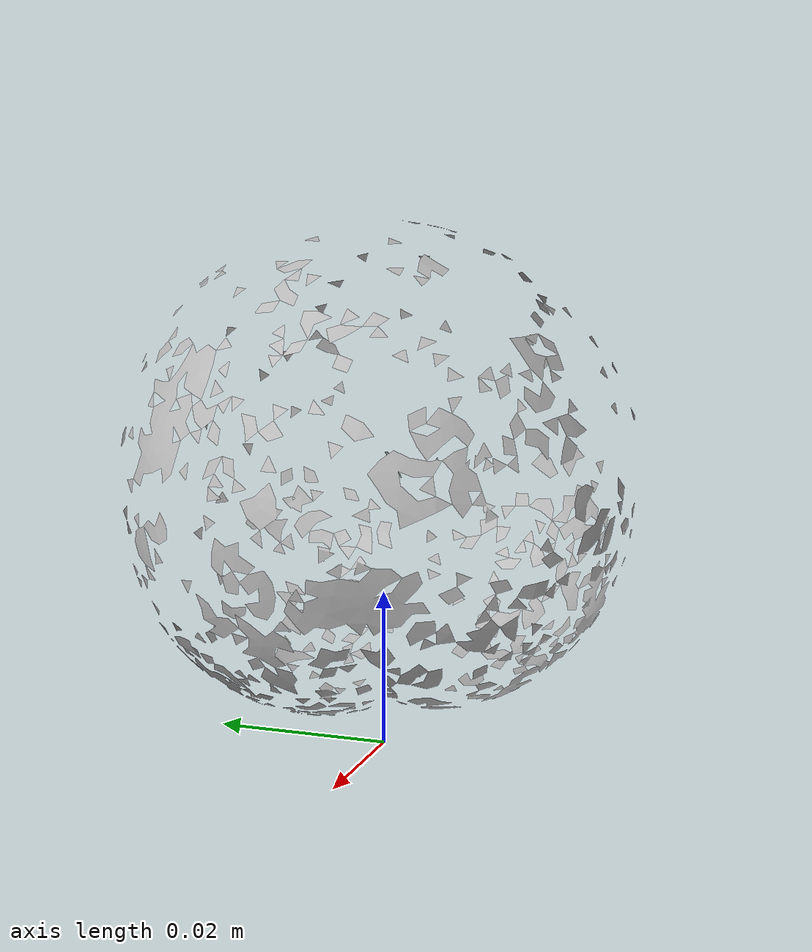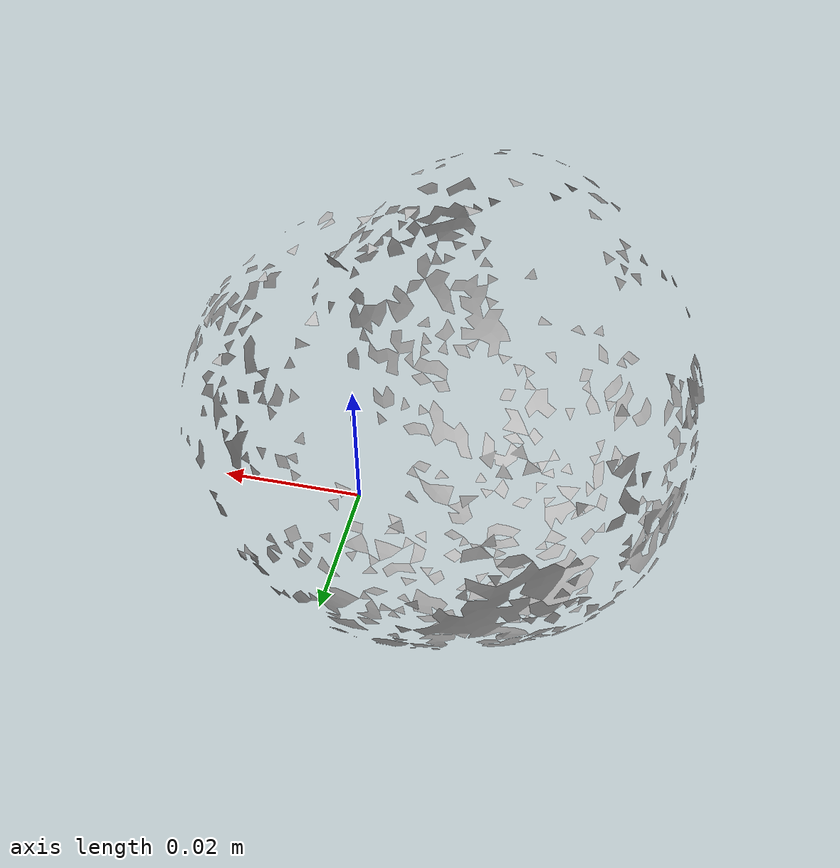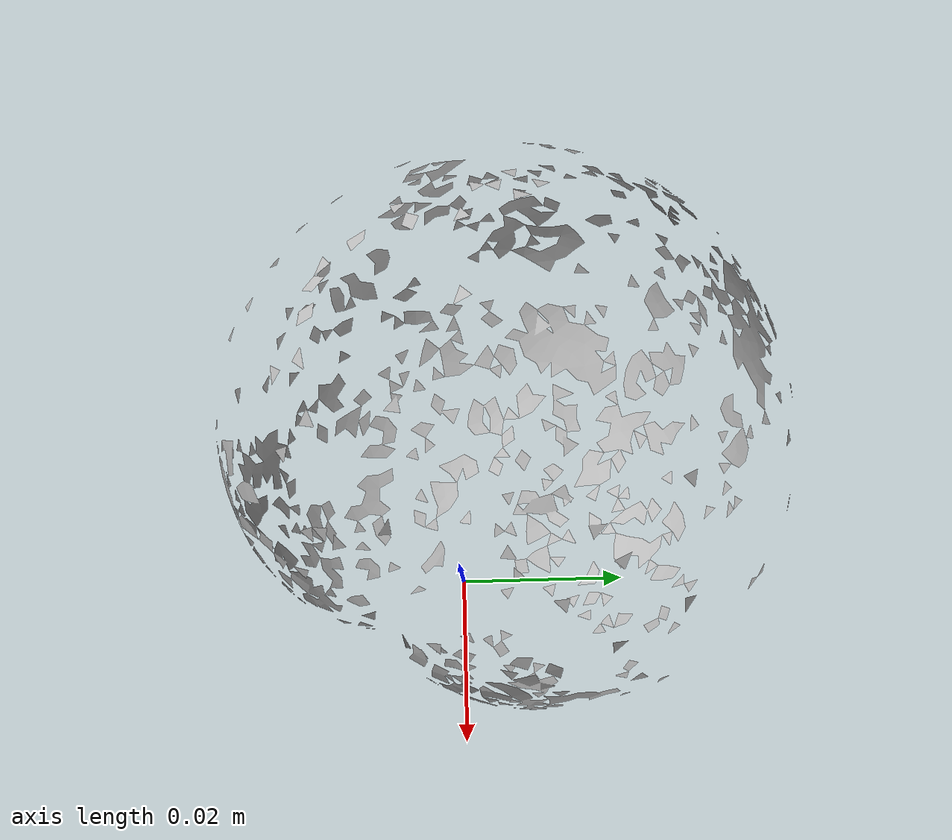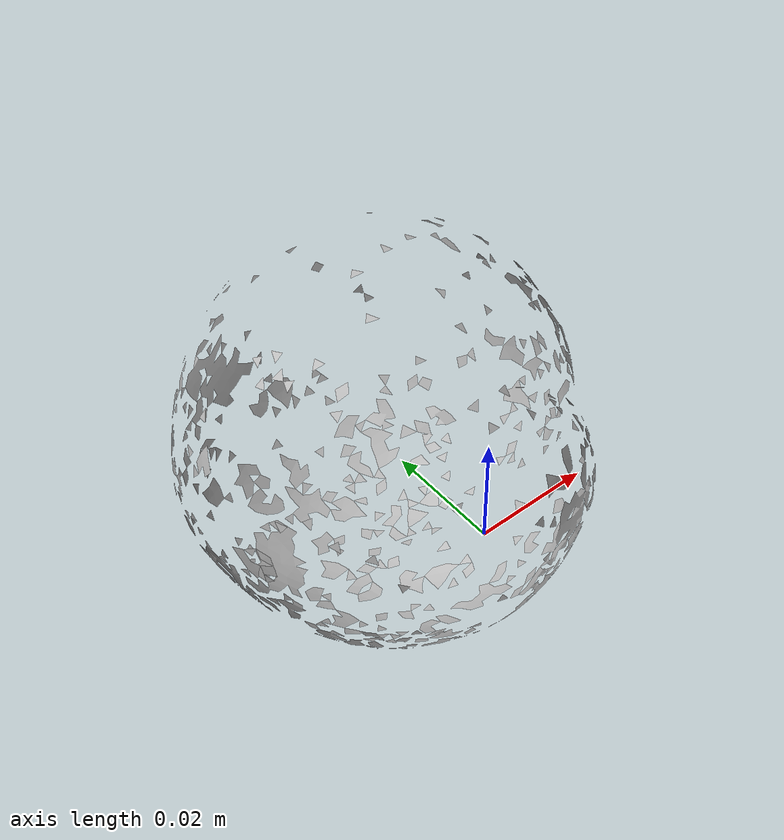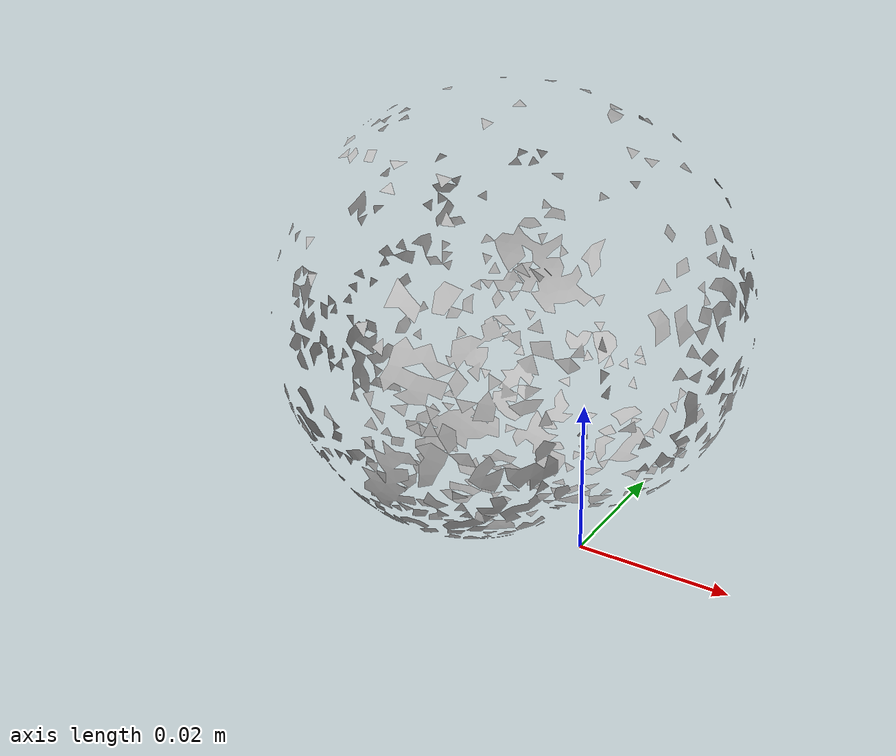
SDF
<?xml version="1.0" ?>
<sdf version="1.4">
  <model name='ycb_015_peach'>
    <link name='body'>
      <inertial>
        <mass>0.033</mass>
        <pose>-0.0150473257379 0.00678399716184 0.0282596031079 0 0 0</pose>
        <inertia>
          <ixx>1.22991776417e-05</ixx>
          <ixy>-5.54718403499e-07</ixy>
          <ixz>1.33134589292e-07</ixz>
          <iyy>1.19459549782e-05</iyy>
          <iyz>-1.60415392037e-07</iyz>
          <izz>1.27205747484e-05</izz>
        </inertia>
      </inertial>
      <visual name='ycb_015_peach_visual'>
        <pose>0 0 0 0 0 0</pose>
        <geometry>
          <mesh>
            <uri>model://ycb_015_peach/meshes/textured.dae</uri>
          </mesh>
        </geometry>
      </visual>
      <collision name='ycb_015_peach_collision'>
        <pose>0 0 0 0 0 0</pose>
        <geometry>
          <mesh>
            <uri>model://ycb_015_peach/meshes/nontextured.stl</uri>
          </mesh>
        </geometry>
        <max_contacts>10</max_contacts>
      </collision>
    </link>
  </model>
</sdf>
